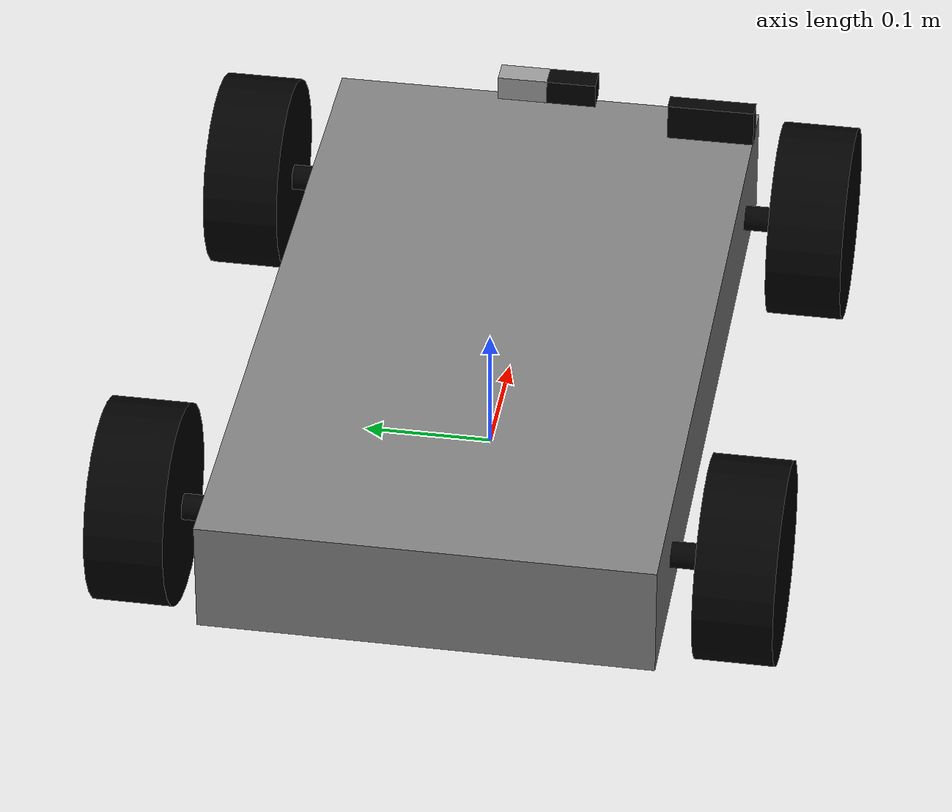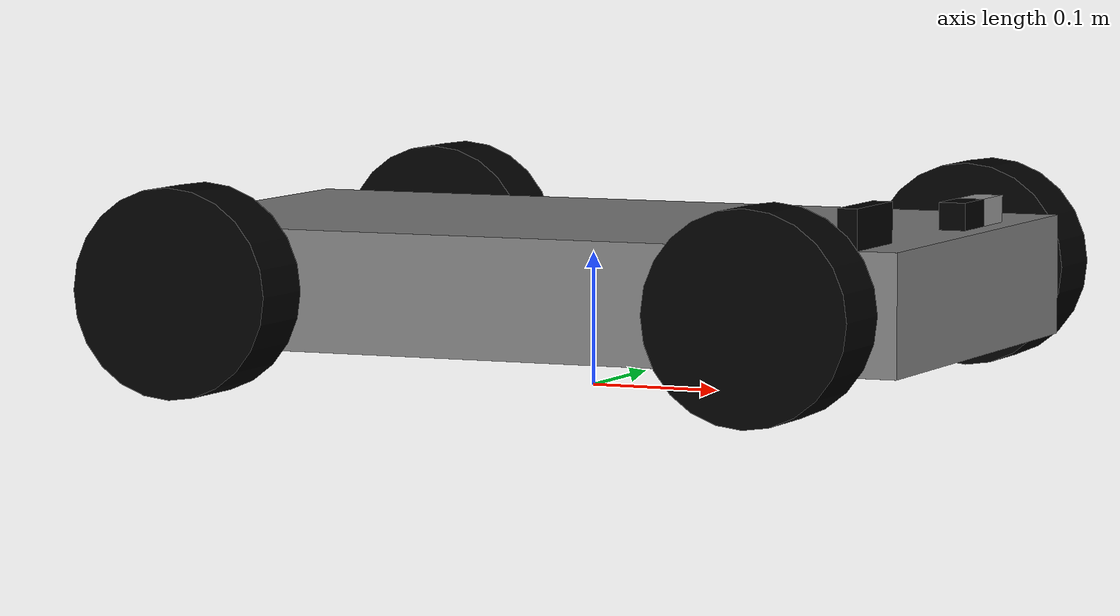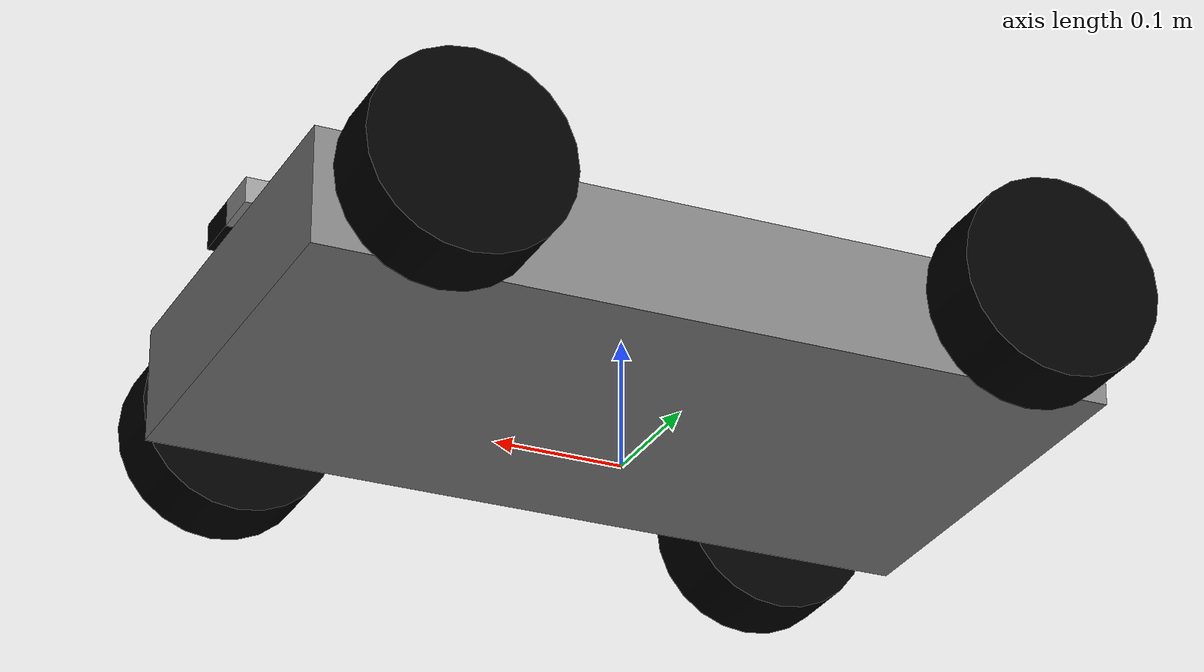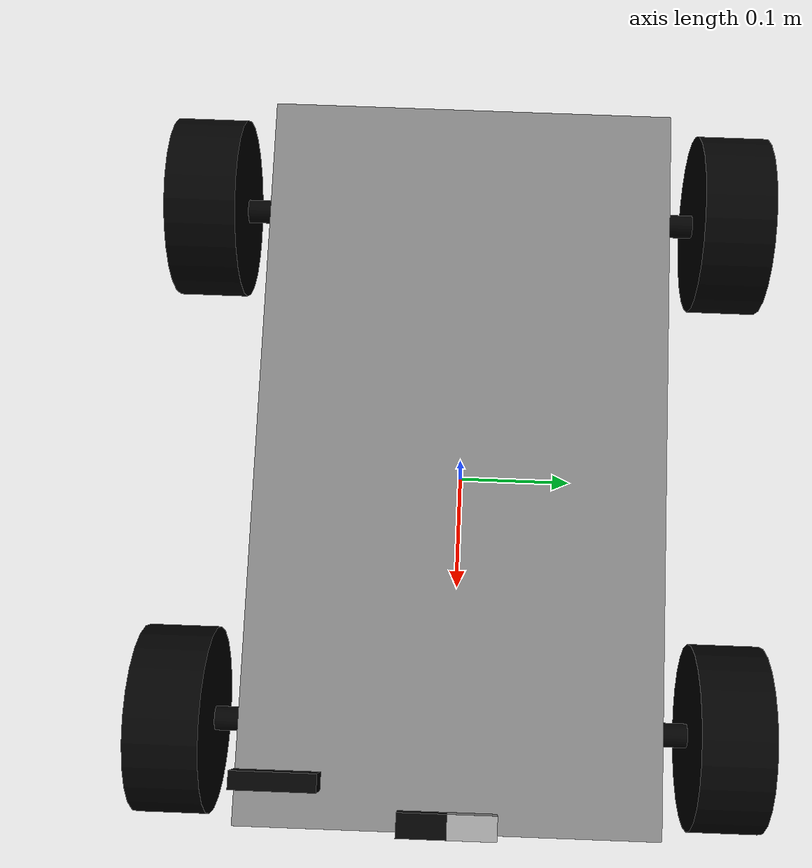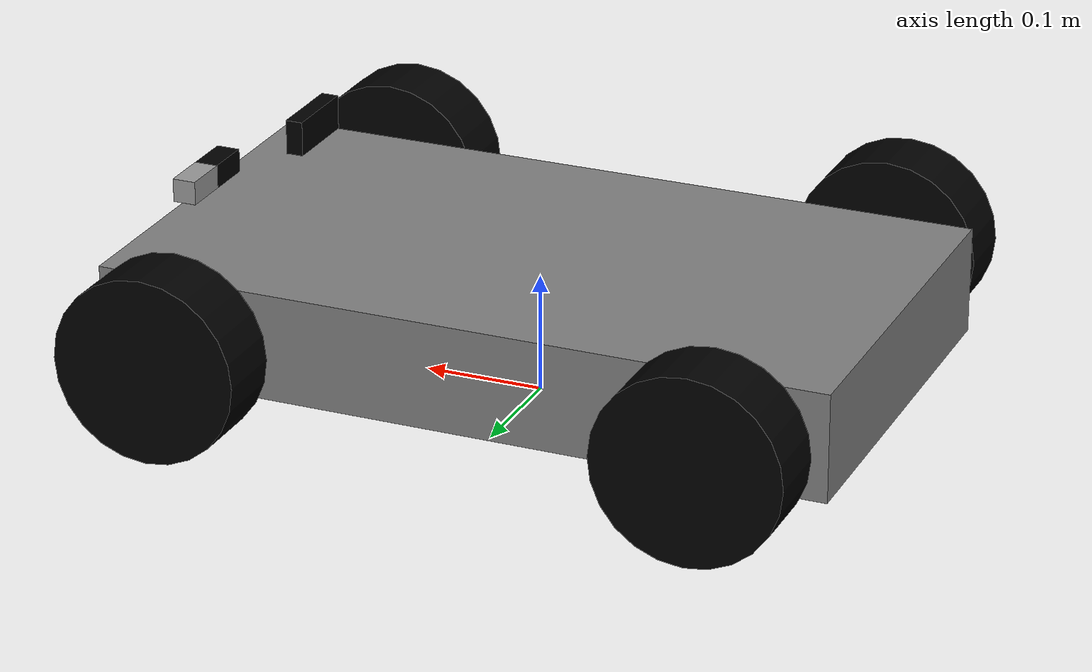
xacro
<?xml version="1.0"?>
<robot xmlns:xacro="http://www.ros.org/wiki/xacro"  name="robot">

    <xacro:include filename="car_core.xacro" />
    <xacro:include filename="gazebo_control.xacro"/>

    <xacro:include filename="tf_lidar.xacro"/>

    <xacro:include filename="zed_camera.xacro"/>
    <xacro:include filename="zed_depth_camera.xacro"/>

</robot>

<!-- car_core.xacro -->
<robot xmlns:xacro="http://www.ros.org/wiki/xacro" name="robot">

    <xacro:include filename="inertial_macros.xacro"/>

    <material name="white">
        <color rgba="1 1 1 1"/>
    </material>

    <material name="black">
        <color rgba="0 0 0 1"/>
    </material>

    <material name="grey">
        <color rgba="0.5 0.5 0.5 1"/>
    </material>

    <material name="red">
        <color rgba="1 0 0 1"/>
    </material>

    <!-- BASE LINK -->
    <link name="base_link">

    </link>

    <!-- sase gövde-->
    <joint name="sase_joint" type="fixed">
        <origin xyz="0 0 0.04"/>
        <parent link="base_link"/>
        <child link="sase"/>
    </joint>

    <link name="sase">
        <visual>
            <geometry>
                <box size="0.615 0.345 0.09"/> <!-- 61.5 cm uzunluk, 34.5 cm genişlik, 9 cm yükseklik -->
            </geometry>
            <material name="grey"/>
            <origin xyz="0 0 0.04"/>
        </visual>

        <collision>
            <geometry>
                <box size="0.615 0.345 0.09"/> <!-- 61.5 cm uzunluk, 34.5 cm genişlik, 9 cm yükseklik -->
            </geometry>
            <origin xyz="0 0 0.04"/>
        </collision>
        <xacro:inertial_box mass="1.0" x="0.615" y="0.345" z="0.09">
            <origin xyz="0 0 0.04" rpy = "0 0 0"/>
        </xacro:inertial_box>
    </link>

    <gazebo reference="sase">
        <material>Gazebo/Grey</material>
    </gazebo>

    <!-- Ön tekerlerin çubuğa bağlanması -->
    <joint name="on_teker_joints" type="fixed">
        <origin xyz="0.112 0 0.02"/>
        <parent link="sase"/>
        <child link="on_teker_cubugu"/>
    </joint>

    <link name="on_teker_cubugu">
        <visual>
            <geometry>
                <cylinder radius="0.01" length="0.49"/> <!-- Örnek değerler -->
            </geometry>
            <material name="black"/>
            <origin xyz="0.112 0 0.02" rpy="${pi/2} 0 0"/>
        </visual>
        <collision>
            <geometry>
                <cylinder radius="0.01" length="0.49"/> <!-- Örnek değerler -->
            </geometry>
            <origin xyz="0.112 0 0.02"  rpy="${pi/2} 0 0"/>
        </collision>
    </link>

    <gazebo reference="on_teker_cubugu">
        <material>Gazebo/Blue</material>
    </gazebo>

    <!-- arka tekerlerin çubuğa bağlanması -->
    <joint name="arka_teker_joints" type="fixed">
        <origin xyz="-0.112 0 0.02" />
        <parent link="sase"/>
        <child link="arka_teker_cubugu"/>
    </joint>

    <link name="arka_teker_cubugu">
        <visual>
            <geometry>
                <cylinder radius="0.01" length="0.49"/> <!-- Örnek değerler -->
            </geometry>
            <material name="black"/>
            <origin xyz="-0.112 0 0.02"  rpy="${pi/2} 0 0"/>
        </visual>
        <collision>
            <geometry>
                <cylinder radius="0.01" length="0.49"/> <!-- Örnek değerler -->
            </geometry>
            <origin xyz="-0.112 0 0.02"  rpy="${pi/2} 0 0"/>
        </collision>
    </link>

    <gazebo reference="arka_teker_cubugu">
        <material>Gazebo/Blue</material>
    </gazebo>

    <!--sag on teker-->
    <joint name="sag_on_teker_joint" type="continuous">
        <origin xyz="0.225 -0.228 0.0825" rpy="${pi/2} 0 0"/>
        <parent link="base_link"/>
        <child link="sag_on_teker"/>
        <axis xyz="0 0 -1"/>
    </joint>

    <link name="sag_on_teker">
        <visual>
            <geometry>
                <cylinder radius="0.0775" length="0.06"/> <!-- 15.5 cm çap, 6 cm yükseklik -->
            </geometry>
            <material name="black"/>

        </visual>

        <collision>
            <geometry>
                <cylinder radius="0.0775" length="0.06"/> <!-- 15.5 cm çap, 6 cm yükseklik -->
            </geometry>

        </collision>
        <xacro:inertial_cylinder mass="0.5" length="0.06" radius="0.0775"> <!-- 15.5 cm çap, 6 cm yükseklik -->
            <origin xyz="0.225 0.228 0.0825" rpy="${pi/2} 0 0"/>

        </xacro:inertial_cylinder>
    </link>

    <gazebo reference="sag_on_teker">
        <material>Gazebo/Black</material>
    </gazebo>

    <!--sag arka teker-->
    <joint name="sag_arka_teker_joint" type="continuous">
        <origin xyz="-0.225 -0.228 0.0825" rpy="${pi/2} 0 0"/>
        <parent link="base_link"/>
        <child link="sag_arka_teker"/>
        <axis xyz="0 0 -1"/>
    </joint>

    <link name="sag_arka_teker">
        <visual>
            <geometry>
                <cylinder radius="0.0775" length="0.06"/> <!-- 15.5 cm çap, 6 cm yükseklik -->
            </geometry>
            <material name="black"/>

        </visual>

        <collision>
            <geometry>
                <cylinder radius="0.0775" length="0.06"/> <!-- 15.5 cm çap, 6 cm yükseklik -->
            </geometry>

        </collision>
        <xacro:inertial_cylinder mass="0.5" length="0.06" radius="0.0775"> <!-- 15.5 cm çap, 6 cm yükseklik -->
        <origin xyz="-0.225 0.228 0.0825" rpy="-${pi/2} 0 0"/>
        </xacro:inertial_cylinder>
    </link>

    <gazebo reference="sag_arka_teker">
        <material>Gazebo/Black</material>
    </gazebo>

    <!--sol on teker-->
    <joint name="sol_on_teker_joint" type="continuous">
        <origin xyz="0.225 0.228 0.0825" rpy = "-${pi/2} 0 0"/>
        <parent link="base_link"/>
        <child link="sol_on_teker"/>
        <axis xyz="0 0 1"/>
    </joint>

    <link name="sol_on_teker">
        <visual>
            <geometry>
                <cylinder radius="0.0775" length="0.06"/> <!-- 15.5 cm çap, 6 cm yükseklik -->
            </geometry>
            <material name="black"/>

        </visual>

        <collision>
            <geometry>
                <cylinder radius="0.0775" length="0.06"/> <!-- 15.5 cm çap, 6 cm yükseklik -->
            </geometry>

        </collision>
        <xacro:inertial_cylinder mass="0.5" length="0.06" radius="0.0775"> <!-- 15.5 cm çap, 6 cm yükseklik -->
            <origin xyz="0.225 -0.228 0.0825" rpy = "${pi/2} 0 0"/>
        </xacro:inertial_cylinder>
    </link>

    <gazebo reference="sol_on_teker">
        <material>Gazebo/Black</material>
    </gazebo>

    <!--sol arka teker-->
    <joint name="sol_arka_teker_joint" type="continuous">
        <origin xyz="-0.225 0.228 0.0825" rpy="-${pi/2} 0 0"/>
        <parent link="base_link"/>
        <child link="sol_arka_teker"/>
        <axis xyz="0 0 1"/>
    </joint>

    <link name="sol_arka_teker">
        <visual>
            <geometry>
                <cylinder radius="0.0775" length="0.06"/> <!-- 15.5 cm çap, 6 cm yükseklik -->
            </geometry>
            <material name="black"/>

        </visual>

        <collision>
            <geometry>
                <cylinder radius="0.0775" length="0.06"/> <!-- 15.5 cm çap, 6 cm yükseklik -->
            </geometry>

        </collision>
        <xacro:inertial_cylinder mass="0.5" length="0.06" radius="0.0775"> <!-- 15.5 cm çap, 6 cm yükseklik -->
            <origin xyz="-0.225 -0.228 0.0825" rpy="-${pi/2} 0 0"/>
        </xacro:inertial_cylinder>
    </link>

    <gazebo reference="sol_arka_teker">
        <material>Gazebo/Black</material>
    </gazebo>

</robot>

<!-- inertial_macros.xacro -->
<robot xmlns:xacro="http://www.ros.org/wiki/xacro" >

    <!-- Specify some standard inertial calculations https://en.wikipedia.org/wiki/List_of_moments_of_inertia -->
    <!-- These make use of xacro's mathematical functionality -->

    <xacro:macro name="inertial_box" params="mass x y z *origin">
        <inertial>
            <xacro:insert_block name="origin"/>
            <mass value="${mass}" />
            <inertia ixx="${(1/12) * mass * (y*y+z*z)}" ixy="0.0" ixz="0.0"
                    iyy="${(1/12) * mass * (x*x+z*z)}" iyz="0.0"
                    izz="${(1/12) * mass * (x*x+y*y)}" />
        </inertial>
    </xacro:macro>

    <xacro:macro name="inertial_cylinder" params="mass length radius *origin">
        <inertial>
            <xacro:insert_block name="origin"/>
            <mass value="${mass}" />
            <inertia ixx="${(1/12) * mass * (3*radius*radius + length*length)}" ixy="0.0" ixz="0.0"
                    iyy="${(1/12) * mass * (3*radius*radius + length*length)}" iyz="0.0"
                    izz="${(1/2) * mass * (radius*radius)}" />
        </inertial>
    </xacro:macro>

</robot>

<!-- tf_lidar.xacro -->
<robot xmlns:xacro="http://www.ros.org/wiki/xacro" >

    <joint name="laser_joint" type="fixed">
        <origin xyz="0.27 -0.138 0.10" rpy="0 0 0"/> <!-- Yükseklik 0.10 olarak değiştirildi -->
        <parent link="sase"/>
        <child link="laser_frame"/>
    </joint>

    <link name="laser_frame">
        <visual>
            <geometry>
                <box size="0.015 0.07 0.03"/>
            </geometry>
            <material name="black"/>

        </visual>
        <collision>
            <geometry>
                <box size="0.015 0.07 0.03"/> <!-- 7 cm uzunluk, 1.5 cm genişlik, 3 cm yükseklik -->
            </geometry>
        </collision>
        <xacro:inertial_box mass="1.0" x="0.015" y="0.07" z="0.03">
            <origin xyz="0 0 0" rpy = "0 0 0"/>
        </xacro:inertial_box>
    </link>

    <gazebo reference="laser_frame">
        <material>Gazebo/Black</material>

        <sensor name="laser" type="ray">
            <pose> 0 0 0 0 0 0 </pose>
            <visualize>true</visualize>
            <update_rate>10</update_rate>
            <ray>
                <scan>
                    <horizontal>
                        <samples>1</samples>
                        <min_angle>0</min_angle>
                        <max_angle>0</max_angle>
                    </horizontal>
                </scan>
                <range>
                    <min>0.1</min>
                    <max>0.5</max>
                </range>
            </ray>
            <plugin name="laser_controller" filename="libgazebo_ros_ray_sensor.so">
                <ros>
                    <argument>~/out:=scan</argument>
                </ros>
                <output_type>sensor_msgs/LaserScan</output_type>
                <frame_name>laser_frame</frame_name>
            </plugin>
        </sensor>
    </gazebo>

</robot>

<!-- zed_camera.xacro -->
<robot xmlns:xacro="http://www.ros.org/wiki/xacro" >

    <!-- Sol kamera -->
    <joint name="zed_left_joint" type="fixed">
        <origin xyz="0.30 0.02 0.10" rpy="0 0 0"/> <!-- Sol kamera konumu, diğer kameradan uzaklık -->
        <parent link="sase"/> <!-- Veya başka bir üst link -->
        <child link="zed_left_frame"/>
    </joint>

    <link name="zed_left_frame">
        <!-- Sol kamera görsel -->
        <visual name="zed_left_visual">
            <geometry>
                <box size="0.02 0.04 0.02"/> <!-- Kutu boyutları -->
            </geometry>
            <material name="gray"/> <!-- Kutu rengi -->
        </visual>
        <collision>
            <geometry>
                <box size="0.02 0.04 0.02"/>
            </geometry>
        </collision>
        <xacro:inertial_box mass="1.0" x="0.2" y="0.1" z="0.05">
            <origin xyz="0 0 0" rpy="0 0 0"/>
        </xacro:inertial_box>
    </link>

    <joint name="left_camera_optical_joint" type="fixed">
        <parent link="zed_left_frame"/>
        <child link="left_camera_link_optical"/>
        <origin xyz="0 0 0" rpy="0 0 0"/>
    </joint>

    <link name="left_camera_link_optical"></link>
    <!-- sol kamera gazebo-->
    <gazebo reference="zed_left_frame">
        <material>Gazebo/Black</material>

        <sensor name="camera" type="camera">
            <pose> 0 0 0 0 0 0 </pose>
            <visualize>true</visualize>
            <update_rate>10</update_rate>
            <camera>
                <horizontal_fov>1.91986</horizontal_fov> <!-- 110 derece -->
                <image>
                    <format>R8G8B8</format>
                    <width>640</width>
                    <height>480</height>
                </image>
                <clip>
                    <near>0.05</near> <!-- 5 cm -->
                    <far>20.0</far> <!-- 20 metre -->
                </clip>
            </camera>
            <plugin name="camera_controller" filename="libgazebo_ros_camera.so">
                <frame_name>left_camera_link_optical</frame_name>
            </plugin>
        </sensor>
    </gazebo>

</robot>

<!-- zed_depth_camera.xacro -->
<robot xmlns:xacro="http://www.ros.org/wiki/xacro" >

        <!-- Sağ kamera -->
    <joint name="zed_right_joint" type="fixed">
        <origin xyz="0.30 -0.02 0.10" rpy="0 0 0"/> <!-- Sağ kamera konumu, diğer kameradan uzaklık -->
        <parent link="sase"/> <!-- Veya başka bir üst link -->
        <child link="zed_right_frame"/>
    </joint>

    <link name="zed_right_frame">
        <!-- Sağ kamera görsel -->
        <visual name="zed_right_visual">
            <geometry>
                <box size="0.02 0.04 0.02"/> <!-- Kutu boyutları -->
            </geometry>
            <material name="black"/> <!-- Kutu rengi -->

        </visual>
        <collision>
            <geometry>
                <box size="0.02 0.04 0.02"/>
            </geometry>
        </collision>
        <xacro:inertial_box mass="1.0" x="0.2" y="0.1" z="0.05">
            <origin xyz="0 0 0" rpy="0 0 0"/>
        </xacro:inertial_box>
    </link>

    <joint name="right_camera_optical_joint" type="fixed">
        <parent link="zed_right_frame"/>
        <child link="right_camera_link_optical"/>
        <origin xyz="0 0 0" rpy="0 0 0"/>
    </joint>

    <link name="right_camera_link_optical"></link>

    <!-- sağ kamera gazebo-->
    <gazebo reference="zed_right_frame">
        <material>Gazebo/Black</material>

        <sensor name="camera" type="depth">
            <pose> 0 0 0 0 0 0 </pose>
            <visualize>true</visualize>
            <update_rate>10</update_rate>
            <camera>
                <horizontal_fov>1.91986</horizontal_fov> <!-- 110 derece -->
                <image>
                    <format>B8G8R8</format>
                    <width>640</width>
                    <height>480</height>
                </image>
                <clip>
                    <near>0.05</near> <!-- 5 cm -->
                    <far>20.0</far> <!-- 20 metre -->
                </clip>
            </camera>
            <plugin name="camera_controller" filename="libgazebo_ros_camera.so">
                <frame_name>right_camera_link_optical</frame_name>
                <min_depth>0.5</min_depth>
                <max_depth>10</max_depth>
            </plugin>
        </sensor>
    </gazebo>

</robot>
